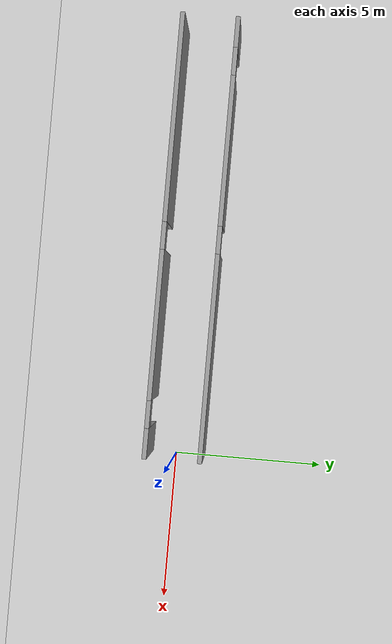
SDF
<sdf version="1.6">
 <world name="default">
  <light name="sun" type="directional">
   <pose>0 0 10 0 -0 0</pose>
   <diffuse>0.8 0.8 0.8 1</diffuse>
   <specular>0.2 0.2 0.2 1</specular>
   <attenuation>
    <range>1000</range>
    <constant>0.9</constant>
    <linear>0.01</linear>
    <quadratic>0.001</quadratic>
   </attenuation>
   <direction>-0.5 0.1 -0.9</direction>
  </light>
  <model name="ground_plane">
   <static>1</static>
   <link name="link">
    <collision name="collision">
     <geometry><plane><normal>0 0 1</normal><size>100 100</size></plane></geometry>
     <surface>
      <contact><collide_bitmask>65535</collide_bitmask></contact>
      <friction><ode><mu>100</mu><mu2>50</mu2></ode></friction>
     </surface>
    </collision>
    <visual name="visual">
     <cast_shadows>0</cast_shadows>
     <geometry><plane><normal>0 0 1</normal><size>100 100</size></plane></geometry>
     <material>
      <script><uri>file://media/materials/scripts/gazebo.material</uri><name>Gazebo/Grey</name></script>
     </material>
    </visual>
   </link>
  </model>
  <gravity>0 0 -9.8</gravity>
  <magnetic_field>6e-06 2.3e-05 -4.2e-05</magnetic_field>
  <atmosphere type="adiabatic"/>
  <physics name="default_physics" default="0" type="ode">
   <max_step_size>0.001</max_step_size>
   <real_time_factor>1</real_time_factor>
   <real_time_update_rate>1000</real_time_update_rate>
  </physics>
  <scene><ambient>0.4 0.4 0.4 1</ambient><background>0.7 0.7 0.7 1</background><shadows>1</shadows></scene>
  <spherical_coordinates>
   <surface_model>EARTH_WGS84</surface_model>
   <latitude_deg>0</latitude_deg>
   <longitude_deg>0</longitude_deg>
   <elevation>0</elevation>
   <heading_deg>0</heading_deg>
  </spherical_coordinates>
  <model name="korytarz_symetryczny">
   <pose>-7.2696 0.027563 0 0 -0 0</pose>
   <link name="Wall_0">
    <pose>-0.002027 0.899482 0 0 -0 0</pose>
    <visual name="Wall_0_Visual_0">
     <pose>-6.75022 0 1.25 0 -0 0</pose>
     <geometry><box><size>0.999559 0.15 2.5</size></box></geometry>
     <material>
      <script><uri>file://media/materials/scripts/gazebo.material</uri><name>Gazebo/Grey</name></script>
      <ambient>1 1 1 1</ambient>
     </material>
     <meta><layer>0</layer></meta>
    </visual>
    <collision name="Wall_0_Collision_0">
     <geometry><box><size>0.999559 0.15 2.5</size></box></geometry>
     <pose>-6.75022 0 1.25 0 -0 0</pose>
    </collision>
    <visual name="Wall_0_Visual_1">
     <pose>-2.9013 0 1.25 0 -0 0</pose>
     <geometry><box><size>4.89828 0.15 2.5</size></box></geometry>
     <material>
      <script><uri>file://media/materials/scripts/gazebo.material</uri><name>Gazebo/Grey</name></script>
      <ambient>1 1 1 1</ambient>
     </material>
     <meta><layer>0</layer></meta>
    </visual>
    <collision name="Wall_0_Collision_1">
     <geometry><box><size>4.89828 0.15 2.5</size></box></geometry>
     <pose>-2.9013 0 1.25 0 -0 0</pose>
    </collision>
    <visual name="Wall_0_Visual_2">
     <pose>3.84892 0 1.25 0 -0 0</pose>
     <geometry><box><size>6.80216 0.15 2.5</size></box></geometry>
     <material>
      <script><uri>file://media/materials/scripts/gazebo.material</uri><name>Gazebo/Grey</name></script>
      <ambient>1 1 1 1</ambient>
     </material>
     <meta><layer>0</layer></meta>
    </visual>
    <collision name="Wall_0_Collision_2">
     <geometry><box><size>6.80216 0.15 2.5</size></box></geometry>
     <pose>3.84892 0 1.25 0 -0 0</pose>
    </collision>
    <visual name="Wall_0_Visual_3">
     <pose>-5.80044 0 2.25 0 -0 0</pose>
     <geometry><box><size>0.9 0.15 0.5</size></box></geometry>
     <material>
      <script><uri>file://media/materials/scripts/gazebo.material</uri><name>Gazebo/Grey</name></script>
      <ambient>1 1 1 1</ambient>
     </material>
     <meta><layer>0</layer></meta>
    </visual>
    <collision name="Wall_0_Collision_3">
     <geometry><box><size>0.9 0.15 0.5</size></box></geometry>
     <pose>-5.80044 0 2.25 0 -0 0</pose>
    </collision>
    <visual name="Wall_0_Visual_4">
     <pose>-0.002157 0 2.25 0 -0 0</pose>
     <geometry><box><size>0.9 0.15 0.5</size></box></geometry>
     <material>
      <script><uri>file://media/materials/scripts/gazebo.material</uri><name>Gazebo/Grey</name></script>
      <ambient>1 1 1 1</ambient>
     </material>
     <meta><layer>0</layer></meta>
    </visual>
    <collision name="Wall_0_Collision_4">
     <geometry><box><size>0.9 0.15 0.5</size></box></geometry>
     <pose>-0.002157 0 2.25 0 -0 0</pose>
    </collision>
   </link>
   <link name="Wall_2">
    <pose>0.002028 -0.899483 0 0 -0 0</pose>
    <visual name="Wall_2_Visual_0">
     <pose>-3.85157 0 1.25 0 -0 0</pose>
     <geometry><box><size>6.79686 0.15 2.5</size></box></geometry>
     <material>
      <script><uri>file://media/materials/scripts/gazebo.material</uri><name>Gazebo/Grey</name></script>
      <ambient>1 1 1 1</ambient>
     </material>
     <meta><layer>0</layer></meta>
    </visual>
    <collision name="Wall_2_Collision_0">
     <geometry><box><size>6.79686 0.15 2.5</size></box></geometry>
     <pose>-3.85157 0 1.25 0 -0 0</pose>
    </collision>
    <visual name="Wall_2_Visual_1">
     <pose>2.89889 0 1.25 0 -0 0</pose>
     <geometry><box><size>4.90406 0.15 2.5</size></box></geometry>
     <material>
      <script><uri>file://media/materials/scripts/gazebo.material</uri><name>Gazebo/Grey</name></script>
      <ambient>1 1 1 1</ambient>
     </material>
     <meta><layer>0</layer></meta>
    </visual>
    <collision name="Wall_2_Collision_1">
     <geometry><box><size>4.90406 0.15 2.5</size></box></geometry>
     <pose>2.89889 0 1.25 0 -0 0</pose>
    </collision>
    <visual name="Wall_2_Visual_2">
     <pose>6.75046 0 1.25 0 -0 0</pose>
     <geometry><box><size>0.999077 0.15 2.5</size></box></geometry>
     <material>
      <script><uri>file://media/materials/scripts/gazebo.material</uri><name>Gazebo/Grey</name></script>
      <ambient>1 1 1 1</ambient>
     </material>
     <meta><layer>0</layer></meta>
    </visual>
    <collision name="Wall_2_Collision_2">
     <geometry><box><size>0.999077 0.15 2.5</size></box></geometry>
     <pose>6.75046 0 1.25 0 -0 0</pose>
    </collision>
    <visual name="Wall_2_Visual_3">
     <pose>-0.003138 0 2.25 0 -0 0</pose>
     <geometry><box><size>0.9 0.15 0.5</size></box></geometry>
     <material>
      <script><uri>file://media/materials/scripts/gazebo.material</uri><name>Gazebo/Grey</name></script>
      <ambient>1 1 1 1</ambient>
     </material>
     <meta><layer>0</layer></meta>
    </visual>
    <collision name="Wall_2_Collision_3">
     <geometry><box><size>0.9 0.15 0.5</size></box></geometry>
     <pose>-0.003138 0 2.25 0 -0 0</pose>
    </collision>
    <visual name="Wall_2_Visual_4">
     <pose>5.80092 0 2.25 0 -0 0</pose>
     <geometry><box><size>0.9 0.15 0.5</size></box></geometry>
     <material>
      <script><uri>file://media/materials/scripts/gazebo.material</uri><name>Gazebo/Grey</name></script>
      <ambient>1 1 1 1</ambient>
     </material>
     <meta><layer>0</layer></meta>
    </visual>
    <collision name="Wall_2_Collision_4">
     <geometry><box><size>0.9 0.15 0.5</size></box></geometry>
     <pose>5.80092 0 2.25 0 -0 0</pose>
    </collision>
   </link>
   <static>1</static>
  </model>
 </world>
</sdf>
